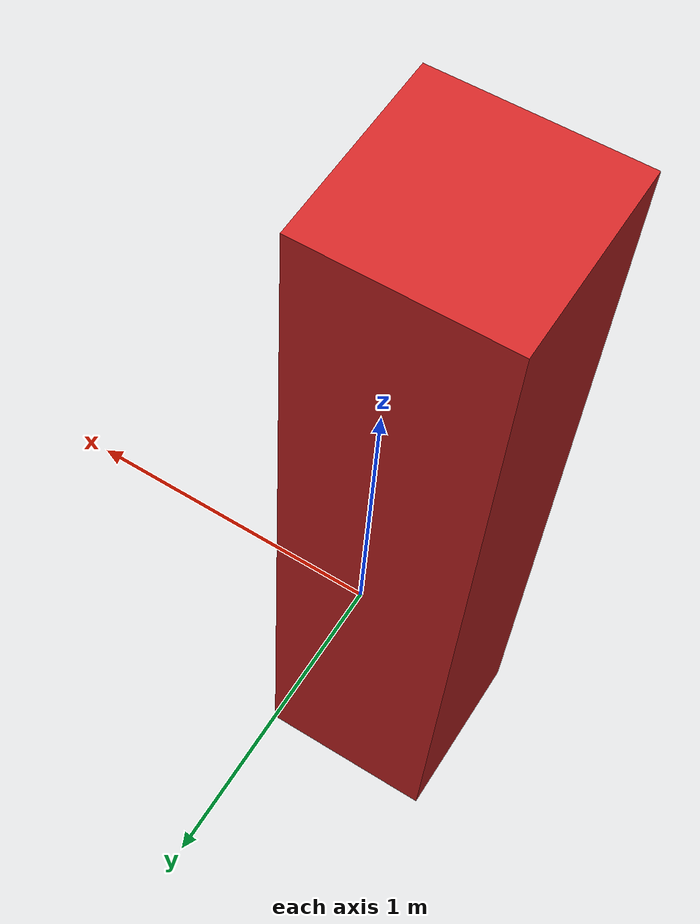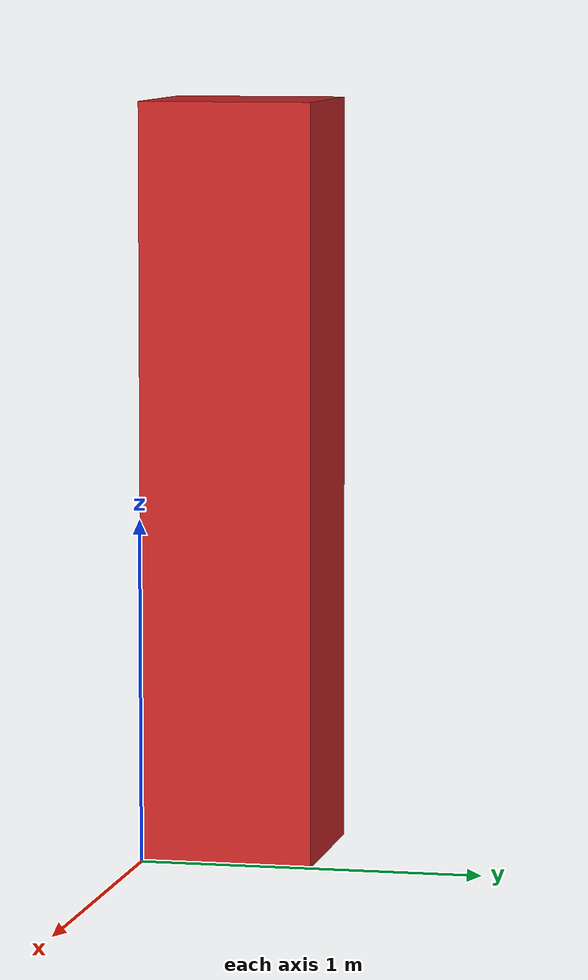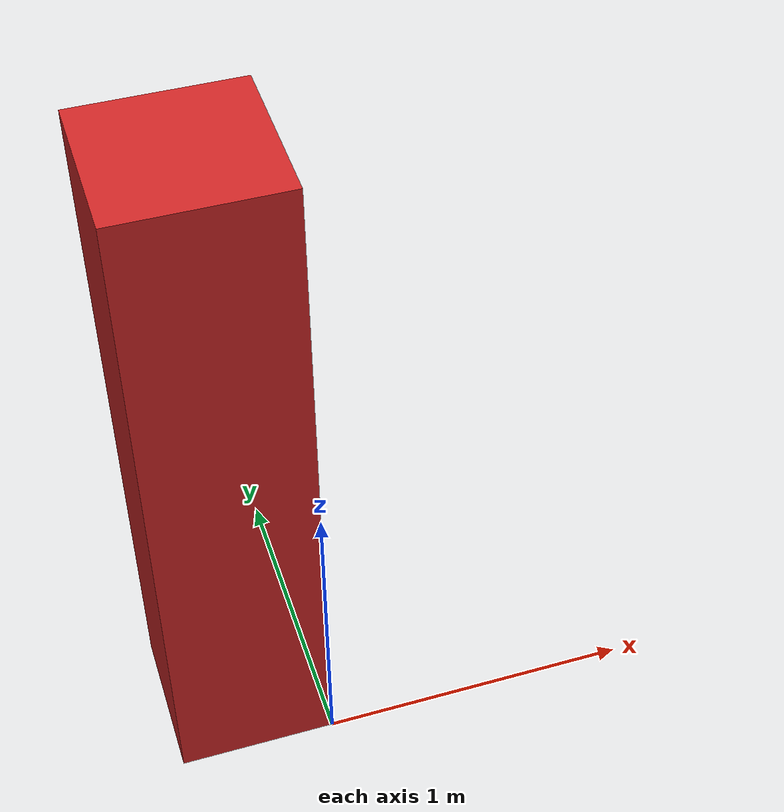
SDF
<?xml version="1.0"?>
<sdf version="1.6">
  <model name="pole_textured_low">
    <static>true</static>

    <link name="link_pole_textured_low">
      <pose frame=''>-0.25 0.25 1.1 0 -0 0</pose>
      <collision name="body_collision">
        <geometry>
          <box>
            <size>0.50 0.50 2.2</size>
          </box>
        </geometry>
      </collision>

      <visual name="visual_pole_textured_low">
	<pose frame=''>0 0 0 0 -0 0</pose>
        <geometry>
          <box>
            <size>0.50 0.50 2.2</size>
          </box>
	</geometry>

	    <material>
		<script>
			<uri>model://pole_textured_low/materials/scripts</uri>
			<uri>model://pole_textured_low/materials/textures</uri>
			<name>repeated_pole_textured_low</name>
		</script>
	    </material>

      </visual>

     </link>
  </model>
</sdf>
